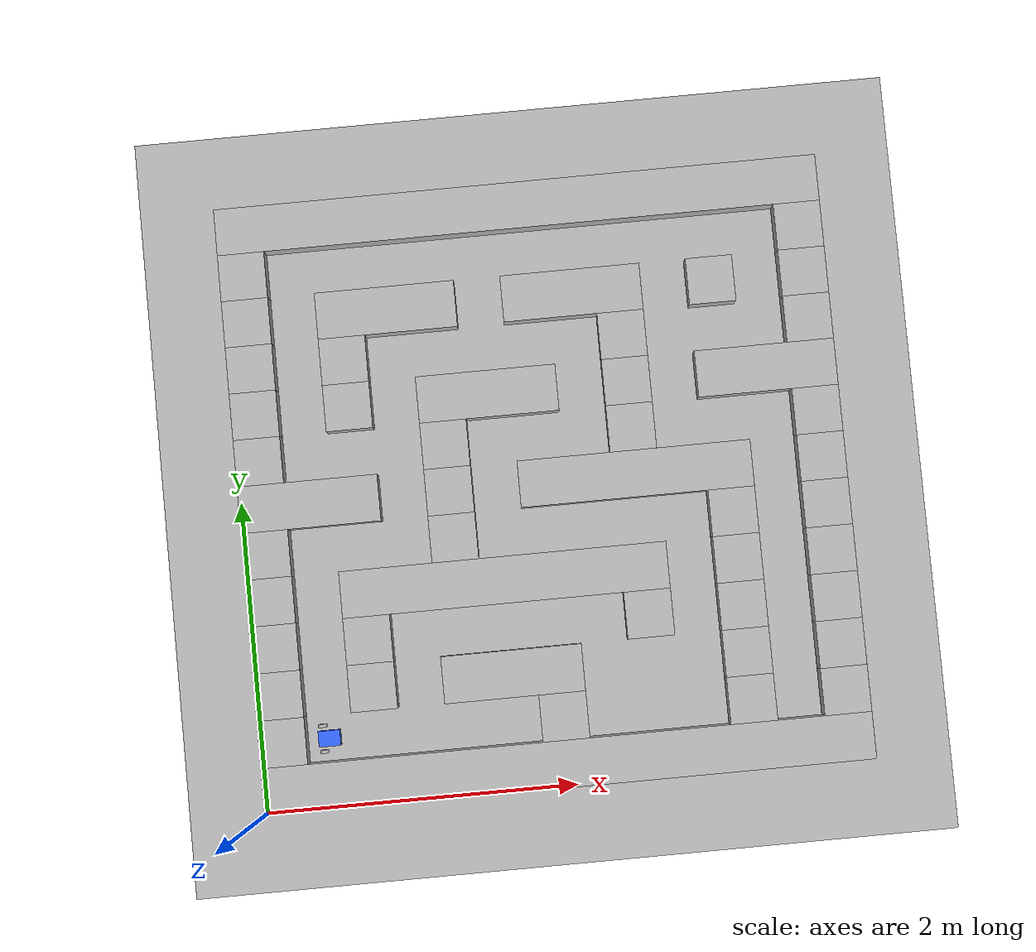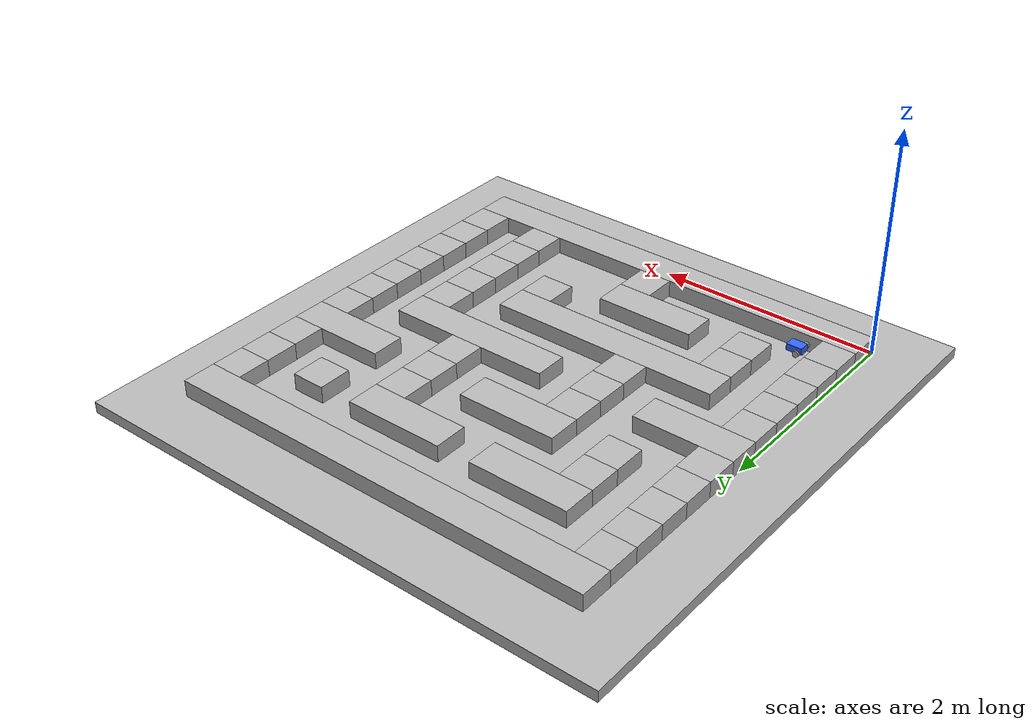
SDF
<?xml version="1.0"?>
<sdf version="1.8"><world name="pinky_maze"><physics name="1ms" type="ode"><max_step_size>0.005</max_step_size><real_time_factor>1.0</real_time_factor></physics><plugin filename="gz-sim-physics-system" name="gz::sim::systems::Physics" /><plugin filename="gz-sim-user-commands-system" name="gz::sim::systems::UserCommands" /><plugin filename="gz-sim-scene-broadcaster-system" name="gz::sim::systems::SceneBroadcaster" /><plugin filename="gz-sim-sensors-system" name="gz::sim::systems::Sensors"><render_engine>ogre2</render_engine></plugin><model name="ground"><static>true</static><link name="link"><collision name="col"><pose>1.95 1.95 -0.05 0 0 0</pose><geometry><box><size>4.9 4.9 0.1</size></box></geometry><surface><friction><ode><mu>0.9</mu><mu2>0.9</mu2></ode></friction></surface></collision><visual name="vis"><pose>1.95 1.95 -0.05 0 0 0</pose><geometry><box><size>4.9 4.9 0.1</size></box></geometry></visual></link></model><model name="maze"><static>true</static><link name="link"><collision name="w0"><pose>1.95 3.75 0.075 0 0 0</pose><geometry><box><size>3.9 0.3 0.15</size></box></geometry></collision><visual name="v0"><pose>1.95 3.75 0.075 0 0 0</pose><geometry><box><size>3.9 0.3 0.15</size></box></geometry></visual><collision name="w1"><pose>0.15 3.4499999999999997 0.075 0 0 0</pose><geometry><box><size>0.3 0.3 0.15</size></box></geometry></collision><visual name="v1"><pose>0.15 3.4499999999999997 0.075 0 0 0</pose><geometry><box><size>0.3 0.3 0.15</size></box></geometry></visual><collision name="w2"><pose>3.75 3.4499999999999997 0.075 0 0 0</pose><geometry><box><size>0.3 0.3 0.15</size></box></geometry></collision><visual name="v2"><pose>3.75 3.4499999999999997 0.075 0 0 0</pose><geometry><box><size>0.3 0.3 0.15</size></box></geometry></visual><collision name="w3"><pose>0.15 3.15 0.075 0 0 0</pose><geometry><box><size>0.3 0.3 0.15</size></box></geometry></collision><visual name="v3"><pose>0.15 3.15 0.075 0 0 0</pose><geometry><box><size>0.3 0.3 0.15</size></box></geometry></visual><collision name="w4"><pose>1.05 3.15 0.075 0 0 0</pose><geometry><box><size>0.8999999999999999 0.3 0.15</size></box></geometry></collision><visual name="v4"><pose>1.05 3.15 0.075 0 0 0</pose><geometry><box><size>0.8999999999999999 0.3 0.15</size></box></geometry></visual><collision name="w5"><pose>2.25 3.15 0.075 0 0 0</pose><geometry><box><size>0.8999999999999999 0.3 0.15</size></box></geometry></collision><visual name="v5"><pose>2.25 3.15 0.075 0 0 0</pose><geometry><box><size>0.8999999999999999 0.3 0.15</size></box></geometry></visual><collision name="w6"><pose>3.15 3.15 0.075 0 0 0</pose><geometry><box><size>0.3 0.3 0.15</size></box></geometry></collision><visual name="v6"><pose>3.15 3.15 0.075 0 0 0</pose><geometry><box><size>0.3 0.3 0.15</size></box></geometry></visual><collision name="w7"><pose>3.75 3.15 0.075 0 0 0</pose><geometry><box><size>0.3 0.3 0.15</size></box></geometry></collision><visual name="v7"><pose>3.75 3.15 0.075 0 0 0</pose><geometry><box><size>0.3 0.3 0.15</size></box></geometry></visual><collision name="w8"><pose>0.15 2.85 0.075 0 0 0</pose><geometry><box><size>0.3 0.3 0.15</size></box></geometry></collision><visual name="v8"><pose>0.15 2.85 0.075 0 0 0</pose><geometry><box><size>0.3 0.3 0.15</size></box></geometry></visual><collision name="w9"><pose>0.75 2.85 0.075 0 0 0</pose><geometry><box><size>0.3 0.3 0.15</size></box></geometry></collision><visual name="v9"><pose>0.75 2.85 0.075 0 0 0</pose><geometry><box><size>0.3 0.3 0.15</size></box></geometry></visual><collision name="w10"><pose>2.55 2.85 0.075 0 0 0</pose><geometry><box><size>0.3 0.3 0.15</size></box></geometry></collision><visual name="v10"><pose>2.55 2.85 0.075 0 0 0</pose><geometry><box><size>0.3 0.3 0.15</size></box></geometry></visual><collision name="w11"><pose>3.75 2.85 0.075 0 0 0</pose><geometry><box><size>0.3 0.3 0.15</size></box></geometry></collision><visual name="v11"><pose>3.75 2.85 0.075 0 0 0</pose><geometry><box><size>0.3 0.3 0.15</size></box></geometry></visual><collision name="w12"><pose>0.15 2.55 0.075 0 0 0</pose><geometry><box><size>0.3 0.3 0.15</size></box></geometry></collision><visual name="v12"><pose>0.15 2.55 0.075 0 0 0</pose><geometry><box><size>0.3 0.3 0.15</size></box></geometry></visual><collision name="w13"><pose>0.75 2.55 0.075 0 0 0</pose><geometry><box><size>0.3 0.3 0.15</size></box></geometry></collision><visual name="v13"><pose>0.75 2.55 0.075 0 0 0</pose><geometry><box><size>0.3 0.3 0.15</size></box></geometry></visual><collision name="w14"><pose>1.65 2.55 0.075 0 0 0</pose><geometry><box><size>0.8999999999999999 0.3 0.15</size></box></geometry></collision><visual name="v14"><pose>1.65 2.55 0.075 0 0 0</pose><geometry><box><size>0.8999999999999999 0.3 0.15</size></box></geometry></visual><collision name="w15"><pose>2.55 2.55 0.075 0 0 0</pose><geometry><box><size>0.3 0.3 0.15</size></box></geometry></collision><visual name="v15"><pose>2.55 2.55 0.075 0 0 0</pose><geometry><box><size>0.3 0.3 0.15</size></box></geometry></visual><collision name="w16"><pose>3.4499999999999997 2.55 0.075 0 0 0</pose><geometry><box><size>0.8999999999999999 0.3 0.15</size></box></geometry></collision><visual name="v16"><pose>3.4499999999999997 2.55 0.075 0 0 0</pose><geometry><box><size>0.8999999999999999 0.3 0.15</size></box></geometry></visual><collision name="w17"><pose>0.15 2.25 0.075 0 0 0</pose><geometry><box><size>0.3 0.3 0.15</size></box></geometry></collision><visual name="v17"><pose>0.15 2.25 0.075 0 0 0</pose><geometry><box><size>0.3 0.3 0.15</size></box></geometry></visual><collision name="w18"><pose>1.3499999999999999 2.25 0.075 0 0 0</pose><geometry><box><size>0.3 0.3 0.15</size></box></geometry></collision><visual name="v18"><pose>1.3499999999999999 2.25 0.075 0 0 0</pose><geometry><box><size>0.3 0.3 0.15</size></box></geometry></visual><collision name="w19"><pose>2.55 2.25 0.075 0 0 0</pose><geometry><box><size>0.3 0.3 0.15</size></box></geometry></collision><visual name="v19"><pose>2.55 2.25 0.075 0 0 0</pose><geometry><box><size>0.3 0.3 0.15</size></box></geometry></visual><collision name="w20"><pose>3.75 2.25 0.075 0 0 0</pose><geometry><box><size>0.3 0.3 0.15</size></box></geometry></collision><visual name="v20"><pose>3.75 2.25 0.075 0 0 0</pose><geometry><box><size>0.3 0.3 0.15</size></box></geometry></visual><collision name="w21"><pose>0.44999999999999996 1.95 0.075 0 0 0</pose><geometry><box><size>0.8999999999999999 0.3 0.15</size></box></geometry></collision><visual name="v21"><pose>0.44999999999999996 1.95 0.075 0 0 0</pose><geometry><box><size>0.8999999999999999 0.3 0.15</size></box></geometry></visual><collision name="w22"><pose>1.3499999999999999 1.95 0.075 0 0 0</pose><geometry><box><size>0.3 0.3 0.15</size></box></geometry></collision><visual name="v22"><pose>1.3499999999999999 1.95 0.075 0 0 0</pose><geometry><box><size>0.3 0.3 0.15</size></box></geometry></visual><collision name="w23"><pose>2.55 1.95 0.075 0 0 0</pose><geometry><box><size>1.5 0.3 0.15</size></box></geometry></collision><visual name="v23"><pose>2.55 1.95 0.075 0 0 0</pose><geometry><box><size>1.5 0.3 0.15</size></box></geometry></visual><collision name="w24"><pose>3.75 1.95 0.075 0 0 0</pose><geometry><box><size>0.3 0.3 0.15</size></box></geometry></collision><visual name="v24"><pose>3.75 1.95 0.075 0 0 0</pose><geometry><box><size>0.3 0.3 0.15</size></box></geometry></visual><collision name="w25"><pose>0.15 1.65 0.075 0 0 0</pose><geometry><box><size>0.3 0.3 0.15</size></box></geometry></collision><visual name="v25"><pose>0.15 1.65 0.075 0 0 0</pose><geometry><box><size>0.3 0.3 0.15</size></box></geometry></visual><collision name="w26"><pose>1.3499999999999999 1.65 0.075 0 0 0</pose><geometry><box><size>0.3 0.3 0.15</size></box></geometry></collision><visual name="v26"><pose>1.3499999999999999 1.65 0.075 0 0 0</pose><geometry><box><size>0.3 0.3 0.15</size></box></geometry></visual><collision name="w27"><pose>3.15 1.65 0.075 0 0 0</pose><geometry><box><size>0.3 0.3 0.15</size></box></geometry></collision><visual name="v27"><pose>3.15 1.65 0.075 0 0 0</pose><geometry><box><size>0.3 0.3 0.15</size></box></geometry></visual><collision name="w28"><pose>3.75 1.65 0.075 0 0 0</pose><geometry><box><size>0.3 0.3 0.15</size></box></geometry></collision><visual name="v28"><pose>3.75 1.65 0.075 0 0 0</pose><geometry><box><size>0.3 0.3 0.15</size></box></geometry></visual><collision name="w29"><pose>0.15 1.3499999999999999 0.075 0 0 0</pose><geometry><box><size>0.3 0.3 0.15</size></box></geometry></collision><visual name="v29"><pose>0.15 1.3499999999999999 0.075 0 0 0</pose><geometry><box><size>0.3 0.3 0.15</size></box></geometry></visual><collision name="w30"><pose>1.65 1.3499999999999999 0.075 0 0 0</pose><geometry><box><size>2.1 0.3 0.15</size></box></geometry></collision><visual name="v30"><pose>1.65 1.3499999999999999 0.075 0 0 0</pose><geometry><box><size>2.1 0.3 0.15</size></box></geometry></visual><collision name="w31"><pose>3.15 1.3499999999999999 0.075 0 0 0</pose><geometry><box><size>0.3 0.3 0.15</size></box></geometry></collision><visual name="v31"><pose>3.15 1.3499999999999999 0.075 0 0 0</pose><geometry><box><size>0.3 0.3 0.15</size></box></geometry></visual><collision name="w32"><pose>3.75 1.3499999999999999 0.075 0 0 0</pose><geometry><box><size>0.3 0.3 0.15</size></box></geometry></collision><visual name="v32"><pose>3.75 1.3499999999999999 0.075 0 0 0</pose><geometry><box><size>0.3 0.3 0.15</size></box></geometry></visual><collision name="w33"><pose>0.15 1.05 0.075 0 0 0</pose><geometry><box><size>0.3 0.3 0.15</size></box></geometry></collision><visual name="v33"><pose>0.15 1.05 0.075 0 0 0</pose><geometry><box><size>0.3 0.3 0.15</size></box></geometry></visual><collision name="w34"><pose>0.75 1.05 0.075 0 0 0</pose><geometry><box><size>0.3 0.3 0.15</size></box></geometry></collision><visual name="v34"><pose>0.75 1.05 0.075 0 0 0</pose><geometry><box><size>0.3 0.3 0.15</size></box></geometry></visual><collision name="w35"><pose>2.55 1.05 0.075 0 0 0</pose><geometry><box><size>0.3 0.3 0.15</size></box></geometry></collision><visual name="v35"><pose>2.55 1.05 0.075 0 0 0</pose><geometry><box><size>0.3 0.3 0.15</size></box></geometry></visual><collision name="w36"><pose>3.15 1.05 0.075 0 0 0</pose><geometry><box><size>0.3 0.3 0.15</size></box></geometry></collision><visual name="v36"><pose>3.15 1.05 0.075 0 0 0</pose><geometry><box><size>0.3 0.3 0.15</size></box></geometry></visual><collision name="w37"><pose>3.75 1.05 0.075 0 0 0</pose><geometry><box><size>0.3 0.3 0.15</size></box></geometry></collision><visual name="v37"><pose>3.75 1.05 0.075 0 0 0</pose><geometry><box><size>0.3 0.3 0.15</size></box></geometry></visual><collision name="w38"><pose>0.15 0.75 0.075 0 0 0</pose><geometry><box><size>0.3 0.3 0.15</size></box></geometry></collision><visual name="v38"><pose>0.15 0.75 0.075 0 0 0</pose><geometry><box><size>0.3 0.3 0.15</size></box></geometry></visual><collision name="w39"><pose>0.75 0.75 0.075 0 0 0</pose><geometry><box><size>0.3 0.3 0.15</size></box></geometry></collision><visual name="v39"><pose>0.75 0.75 0.075 0 0 0</pose><geometry><box><size>0.3 0.3 0.15</size></box></geometry></visual><collision name="w40"><pose>1.65 0.75 0.075 0 0 0</pose><geometry><box><size>0.8999999999999999 0.3 0.15</size></box></geometry></collision><visual name="v40"><pose>1.65 0.75 0.075 0 0 0</pose><geometry><box><size>0.8999999999999999 0.3 0.15</size></box></geometry></visual><collision name="w41"><pose>3.15 0.75 0.075 0 0 0</pose><geometry><box><size>0.3 0.3 0.15</size></box></geometry></collision><visual name="v41"><pose>3.15 0.75 0.075 0 0 0</pose><geometry><box><size>0.3 0.3 0.15</size></box></geometry></visual><collision name="w42"><pose>3.75 0.75 0.075 0 0 0</pose><geometry><box><size>0.3 0.3 0.15</size></box></geometry></collision><visual name="v42"><pose>3.75 0.75 0.075 0 0 0</pose><geometry><box><size>0.3 0.3 0.15</size></box></geometry></visual><collision name="w43"><pose>0.15 0.44999999999999996 0.075 0 0 0</pose><geometry><box><size>0.3 0.3 0.15</size></box></geometry></collision><visual name="v43"><pose>0.15 0.44999999999999996 0.075 0 0 0</pose><geometry><box><size>0.3 0.3 0.15</size></box></geometry></visual><collision name="w44"><pose>1.95 0.44999999999999996 0.075 0 0 0</pose><geometry><box><size>0.3 0.3 0.15</size></box></geometry></collision><visual name="v44"><pose>1.95 0.44999999999999996 0.075 0 0 0</pose><geometry><box><size>0.3 0.3 0.15</size></box></geometry></visual><collision name="w45"><pose>3.15 0.44999999999999996 0.075 0 0 0</pose><geometry><box><size>0.3 0.3 0.15</size></box></geometry></collision><visual name="v45"><pose>3.15 0.44999999999999996 0.075 0 0 0</pose><geometry><box><size>0.3 0.3 0.15</size></box></geometry></visual><collision name="w46"><pose>3.75 0.44999999999999996 0.075 0 0 0</pose><geometry><box><size>0.3 0.3 0.15</size></box></geometry></collision><visual name="v46"><pose>3.75 0.44999999999999996 0.075 0 0 0</pose><geometry><box><size>0.3 0.3 0.15</size></box></geometry></visual><collision name="w47"><pose>1.95 0.15 0.075 0 0 0</pose><geometry><box><size>3.9 0.3 0.15</size></box></geometry></collision><visual name="v47"><pose>1.95 0.15 0.075 0 0 0</pose><geometry><box><size>3.9 0.3 0.15</size></box></geometry></visual></link></model><model name="pinky"><pose>0.44999999999999996 0.44999999999999996 0.07 0 0 0</pose><link name="base"><inertial><pose>-0.055 0 0.04 0 0 0</pose><mass>0.6</mass><inertia><ixx>0.001</ixx><iyy>0.001</iyy><izz>0.001</izz><ixy>0.0</ixy><ixz>0.0</ixz><iyz>0.0</iyz></inertia></inertial><collision name="col"><pose>0 0 0.04 0 0 0</pose><geometry><box><size>0.14 0.1 0.06</size></box></geometry></collision><visual name="vis"><pose>0 0 0.04 0 0 0</pose><geometry><box><size>0.14 0.1 0.06</size></box></geometry><material><ambient>0.2 0.4 1 1</ambient></material></visual><collision name="skid_col"><pose>-0.065 0 0.0075 0 0 0</pose><geometry><box><size>0.015 0.06 0.015</size></box></geometry><surface><friction><ode><mu>0.02</mu><mu2>0.02</mu2></ode></friction></surface></collision><visual name="skid_vis"><pose>-0.065 0 0.0075 0 0 0</pose><geometry><box><size>0.015 0.06 0.015</size></box></geometry></visual><sensor name="lidar" type="gpu_lidar"><pose>0 0 0.10 0 0 0</pose><topic>lidar/scan</topic><update_rate>10</update_rate><always_on>1</always_on><visualize>0</visualize><lidar><scan><horizontal><samples>180</samples><resolution>1</resolution><min_angle>-3.14159</min_angle><max_angle>3.14159</max_angle></horizontal></scan><range><min>0.02</min><max>3.0</max><resolution>0.01</resolution></range></lidar></sensor></link><link name="wheel_left"><pose>-0.04 0.082 0.028 -1.5707 0 0</pose><inertial><mass>0.1</mass><inertia><ixx>0.0001</ixx><iyy>0.0001</iyy><izz>0.0001</izz><ixy>0.0</ixy><ixz>0.0</ixz><iyz>0.0</iyz></inertia></inertial><collision name="col"><geometry><cylinder><radius>0.028</radius><length>0.02</length></cylinder></geometry><surface><contact><ode><kp>10000000.0</kp><kd>1.0</kd><max_vel>0.1</max_vel></ode></contact><friction><ode><mu>2.0</mu><mu2>1.0</mu2></ode></friction></surface></collision><visual name="vis"><geometry><cylinder><radius>0.028</radius><length>0.02</length></cylinder></geometry></visual></link><link name="wheel_right"><pose>-0.04 -0.082 0.028 -1.5707 0 0</pose><inertial><mass>0.1</mass><inertia><ixx>0.0001</ixx><iyy>0.0001</iyy><izz>0.0001</izz><ixy>0.0</ixy><ixz>0.0</ixz><iyz>0.0</iyz></inertia></inertial><collision name="col"><geometry><cylinder><radius>0.028</radius><length>0.02</length></cylinder></geometry><surface><contact><ode><kp>10000000.0</kp><kd>1.0</kd><max_vel>0.1</max_vel></ode></contact><friction><ode><mu>2.0</mu><mu2>1.0</mu2></ode></friction></surface></collision><visual name="vis"><geometry><cylinder><radius>0.028</radius><length>0.02</length></cylinder></geometry></visual></link><joint name="j_left" type="revolute"><parent>base</parent><child>wheel_left</child><axis><xyz>0 0 1</xyz></axis></joint><joint name="j_right" type="revolute"><parent>base</parent><child>wheel_right</child><axis><xyz>0 0 1</xyz></axis></joint><plugin filename="gz-sim-diff-drive-system" name="gz::sim::systems::DiffDrive"><left_joint>j_left</left_joint><right_joint>j_right</right_joint><wheel_separation>0.164</wheel_separation><wheel_radius>0.028</wheel_radius><odom_publish_frequency>20</odom_publish_frequency><odom_topic>odometry_diff</odom_topic><frame_id>odom</frame_id><child_frame_id>base_link</child_frame_id></plugin><plugin filename="gz-sim-odometry-publisher-system" name="gz::sim::systems::OdometryPublisher"><dimensions>2</dimensions><odom_topic>odometry_gt</odom_topic><odom_publish_frequency>20</odom_publish_frequency></plugin></model></world></sdf>
